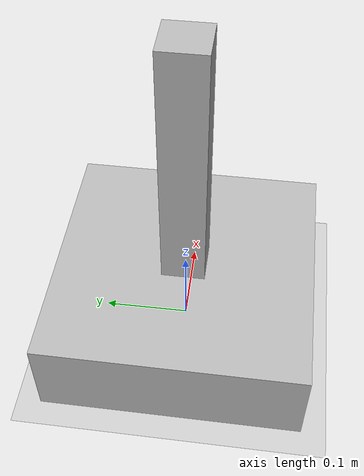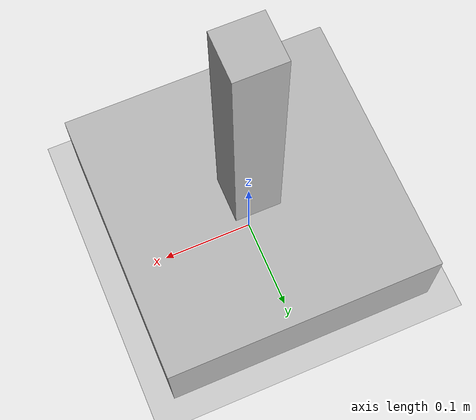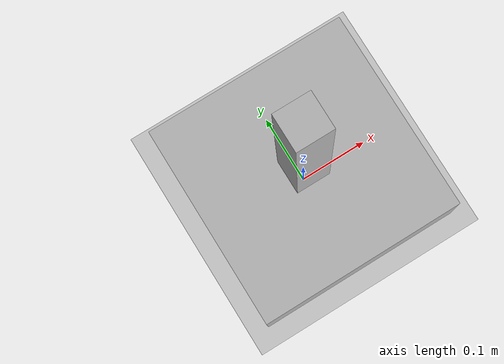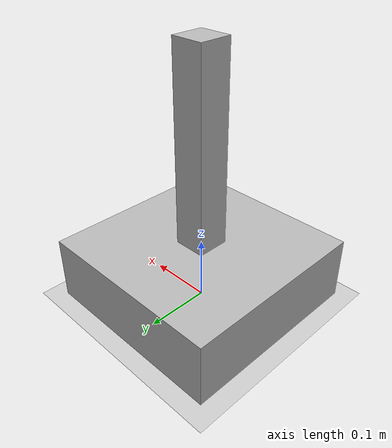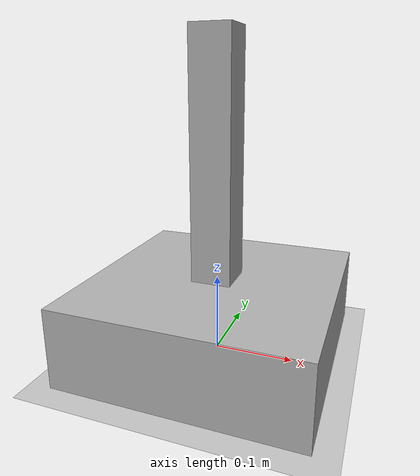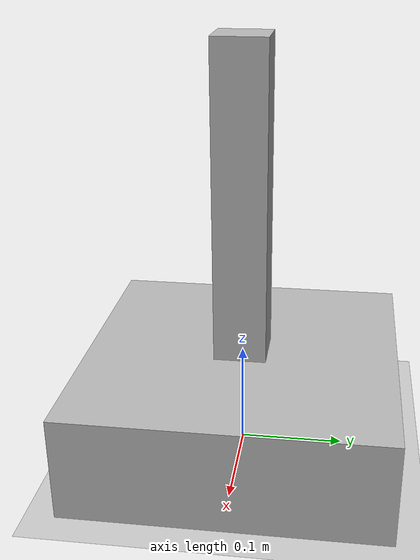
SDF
<?xml version="1.0" ?>
<sdf version="1.5">
  <world name="default">
    <include>
      <uri>model://sun</uri>
    </include>
    <include>
      <uri>model://ground_plane</uri>
    </include>
    <include>
      <name>pendulum</name>
      <uri>model://pendulum</uri>
      <static>false</static>
      <pose>0 0 0 0 0 0</pose>
    </include>
  </world>
</sdf>

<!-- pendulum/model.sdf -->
<sdf version='1.6'>
    <model name="pendulum">
        <static>false</static>
        <link name='base'>
            <inertial>
                <mass>10</mass>
                <inertia>
                    <ixx>1</ixx>
                    <ixy>0.0</ixy>
                    <ixz>0.0</ixz>
                    <iyy>1</iyy>
                    <iyz>0.0</iyz>
                    <izz>1</izz>
                </inertia>
            </inertial>
            <pose>0 0 .05 0 0 0</pose>
            <collision name='collision'>
                <geometry>
                    <box>
                        <size>.3 .3 .1</size>
                    </box>
                </geometry>
            </collision>
            <visual name='visual'>
                <geometry>
                    <box>
                        <size>.3 .3 .1</size>
                    </box>
                </geometry>
            </visual>
        </link>

        <link name='link1'>
            <inertial>
                <mass>1.0</mass>
                <inertia>
                    <ixx>0.0133</ixx>
                    <ixy>0.0</ixy>
                    <ixz>0.0</ixz>
                    <iyy>0.0133</iyy>
                    <iyz>0.0</iyz>
                    <izz>0.00001</izz>
                </inertia>
            </inertial>
            <pose>0 0 .25 0 0 0</pose>
            <collision name='collision'>
                <geometry>
                    <box>
                        <size>.05 .05 .3</size>
                    </box>
                </geometry>
            </collision>
            <visual name='visual'>
                <geometry>
                    <box>
                        <size>.05 .05 .3</size>
                    </box>
                </geometry>
            </visual>
        </link>

        <joint type="revolute" name="hinge1">
            <pose>0 0 -0.15 0 0 0</pose>
            <child>link1</child>
            <parent>base</parent>
            <axis>
                <xyz>0 1 0</xyz>
            </axis>
        </joint>

        <joint type="fixed" name="fix">
            <pose>0 0 0 0 0 0</pose>
            <child>base</child>
            <parent>world</parent>
        </joint>

        <plugin name="ur5_model_plugin" filename="libur5_model_plugin.so">
            <topic_name>cmd_action</topic_name>
        </plugin>
    </model>
</sdf>
